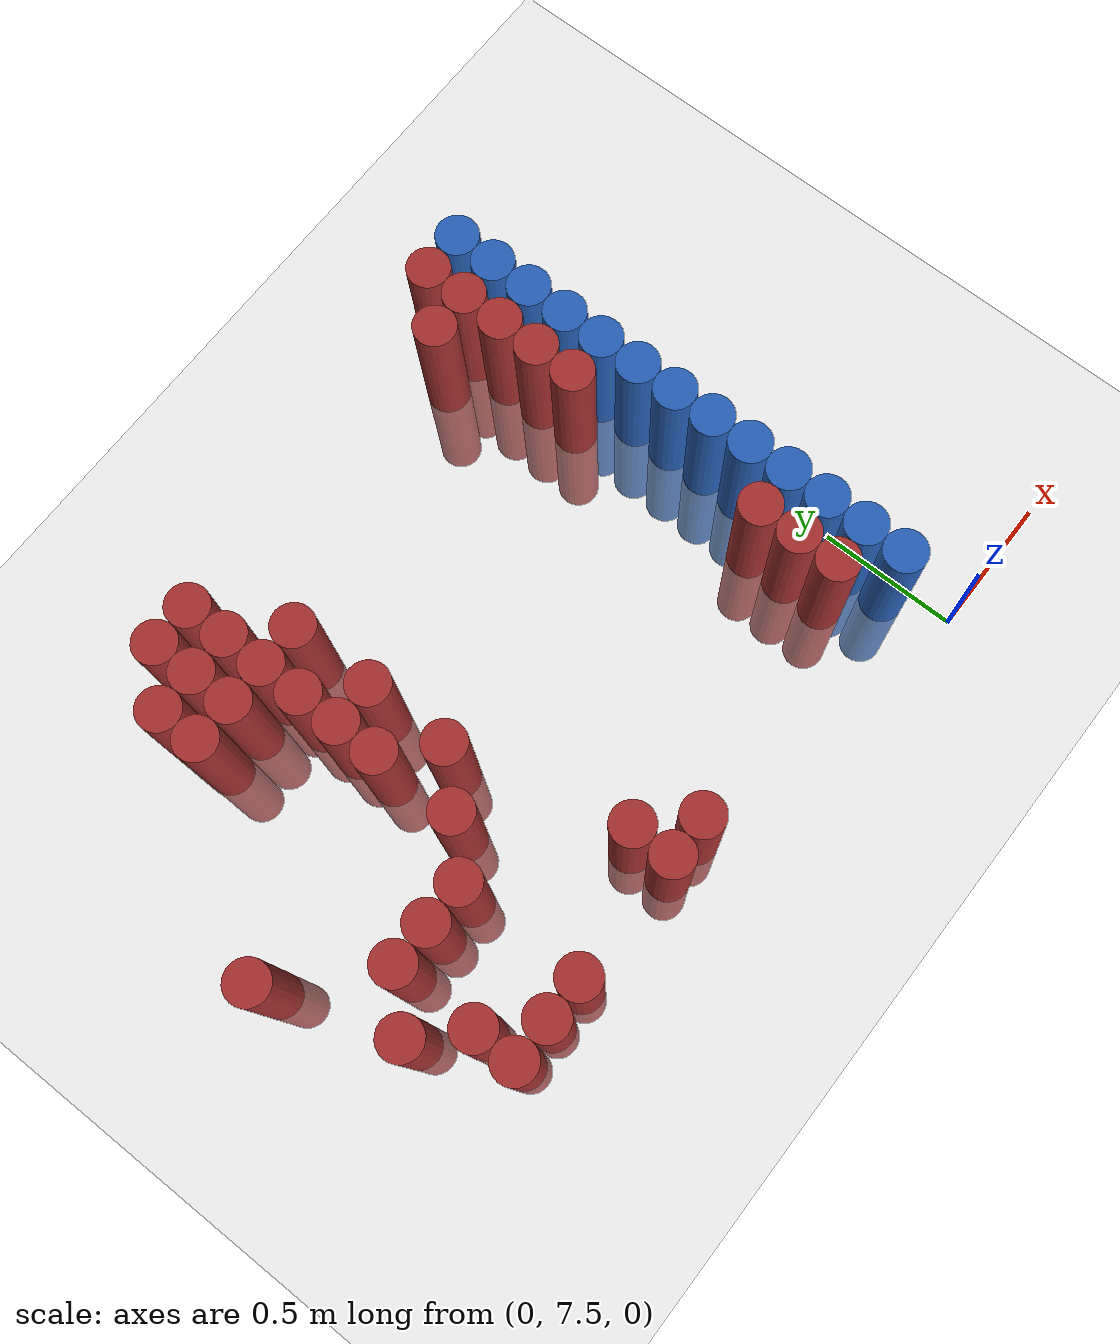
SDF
<sdf version="1.6">
 <world name="default">
  <model name="ground_plane">
   <static>1</static>
   <link name="link">
    <collision name="collision">
     <geometry><plane><normal>0 0 1</normal><size>100 100</size></plane></geometry>
     <surface><friction><ode><mu>100</mu><mu2>50</mu2></ode></friction></surface>
    </collision>
    <visual name="visual">
     <cast_shadows>0</cast_shadows>
     <geometry><plane><normal>0 0 1</normal><size>100 100</size></plane></geometry>
     <material>
      <script><uri>file://media/materials/scripts/gazebo.material</uri><name>Gazebo/Grey</name></script>
     </material>
    </visual>
   </link>
  </model>
  <model name="unit_cylinder_236">
   <static>1</static>
   <pose>-2.325000 8.475000 0.000000 0.000000 0.000000 0.000000</pose>
   <link name="link">
    <inertial>
     <mass>1</mass>
     <inertia><ixx>0.145833</ixx><ixy>0</ixy><ixz>0</ixz><iyy>0.145833</iyy><iyz>0</iyz><izz>0.125</izz></inertia>
    </inertial>
    <collision name="collision">
     <geometry><cylinder><radius>0.075000</radius><length>1</length></cylinder></geometry>
    </collision>
    <visual name="visual">
     <geometry><cylinder><radius>0.075000</radius><length>1</length></cylinder></geometry>
     <material>
      <ambient>0.648000 0.192000 0.192000 1</ambient>
      <diffuse>0.648000 0.192000 0.192000 1</diffuse>
     </material>
     <material>
      <script><name>Gazebo/Grey</name><uri>file://media/materials/scripts/gazebo.material</uri></script>
     </material>
    </visual>
   </link>
  </model>
  <model name="unit_cylinder_242">
   <static>1</static>
   <pose>-2.175000 8.025000 0.000000 0.000000 0.000000 0.000000</pose>
   <link name="link">
    <inertial>
     <mass>1</mass>
     <inertia><ixx>0.145833</ixx><ixy>0</ixy><ixz>0</ixz><iyy>0.145833</iyy><iyz>0</iyz><izz>0.125</izz></inertia>
    </inertial>
    <collision name="collision">
     <geometry><cylinder><radius>0.075000</radius><length>1</length></cylinder></geometry>
    </collision>
    <visual name="visual">
     <geometry><cylinder><radius>0.075000</radius><length>1</length></cylinder></geometry>
     <material>
      <ambient>0.648000 0.192000 0.192000 1</ambient>
      <diffuse>0.648000 0.192000 0.192000 1</diffuse>
     </material>
     <material>
      <script><name>Gazebo/Grey</name><uri>file://media/materials/scripts/gazebo.material</uri></script>
     </material>
    </visual>
   </link>
  </model>
  <model name="unit_cylinder_247">
   <static>1</static>
   <pose>-2.025000 7.725000 0.000000 0.000000 0.000000 0.000000</pose>
   <link name="link">
    <inertial>
     <mass>1</mass>
     <inertia><ixx>0.145833</ixx><ixy>0</ixy><ixz>0</ixz><iyy>0.145833</iyy><iyz>0</iyz><izz>0.125</izz></inertia>
    </inertial>
    <collision name="collision">
     <geometry><cylinder><radius>0.075000</radius><length>1</length></cylinder></geometry>
    </collision>
    <visual name="visual">
     <geometry><cylinder><radius>0.075000</radius><length>1</length></cylinder></geometry>
     <material>
      <ambient>0.648000 0.192000 0.192000 1</ambient>
      <diffuse>0.648000 0.192000 0.192000 1</diffuse>
     </material>
     <material>
      <script><name>Gazebo/Grey</name><uri>file://media/materials/scripts/gazebo.material</uri></script>
     </material>
    </visual>
   </link>
  </model>
  <model name="unit_cylinder_248">
   <static>1</static>
   <pose>-2.025000 7.875000 0.000000 0.000000 0.000000 0.000000</pose>
   <link name="link">
    <inertial>
     <mass>1</mass>
     <inertia><ixx>0.145833</ixx><ixy>0</ixy><ixz>0</ixz><iyy>0.145833</iyy><iyz>0</iyz><izz>0.125</izz></inertia>
    </inertial>
    <collision name="collision">
     <geometry><cylinder><radius>0.075000</radius><length>1</length></cylinder></geometry>
    </collision>
    <visual name="visual">
     <geometry><cylinder><radius>0.075000</radius><length>1</length></cylinder></geometry>
     <material>
      <ambient>0.648000 0.192000 0.192000 1</ambient>
      <diffuse>0.648000 0.192000 0.192000 1</diffuse>
     </material>
     <material>
      <script><name>Gazebo/Grey</name><uri>file://media/materials/scripts/gazebo.material</uri></script>
     </material>
    </visual>
   </link>
  </model>
  <model name="unit_cylinder_249">
   <static>1</static>
   <pose>-2.025000 8.175000 0.000000 0.000000 0.000000 0.000000</pose>
   <link name="link">
    <inertial>
     <mass>1</mass>
     <inertia><ixx>0.145833</ixx><ixy>0</ixy><ixz>0</ixz><iyy>0.145833</iyy><iyz>0</iyz><izz>0.125</izz></inertia>
    </inertial>
    <collision name="collision">
     <geometry><cylinder><radius>0.075000</radius><length>1</length></cylinder></geometry>
    </collision>
    <visual name="visual">
     <geometry><cylinder><radius>0.075000</radius><length>1</length></cylinder></geometry>
     <material>
      <ambient>0.648000 0.192000 0.192000 1</ambient>
      <diffuse>0.648000 0.192000 0.192000 1</diffuse>
     </material>
     <material>
      <script><name>Gazebo/Grey</name><uri>file://media/materials/scripts/gazebo.material</uri></script>
     </material>
    </visual>
   </link>
  </model>
  <model name="unit_cylinder_256">
   <static>1</static>
   <pose>-1.875000 7.725000 0.000000 0.000000 0.000000 0.000000</pose>
   <link name="link">
    <inertial>
     <mass>1</mass>
     <inertia><ixx>0.145833</ixx><ixy>0</ixy><ixz>0</ixz><iyy>0.145833</iyy><iyz>0</iyz><izz>0.125</izz></inertia>
    </inertial>
    <collision name="collision">
     <geometry><cylinder><radius>0.075000</radius><length>1</length></cylinder></geometry>
    </collision>
    <visual name="visual">
     <geometry><cylinder><radius>0.075000</radius><length>1</length></cylinder></geometry>
     <material>
      <ambient>0.648000 0.192000 0.192000 1</ambient>
      <diffuse>0.648000 0.192000 0.192000 1</diffuse>
     </material>
     <material>
      <script><name>Gazebo/Grey</name><uri>file://media/materials/scripts/gazebo.material</uri></script>
     </material>
    </visual>
   </link>
  </model>
  <model name="unit_cylinder_257">
   <static>1</static>
   <pose>-1.875000 8.175000 0.000000 0.000000 0.000000 0.000000</pose>
   <link name="link">
    <inertial>
     <mass>1</mass>
     <inertia><ixx>0.145833</ixx><ixy>0</ixy><ixz>0</ixz><iyy>0.145833</iyy><iyz>0</iyz><izz>0.125</izz></inertia>
    </inertial>
    <collision name="collision">
     <geometry><cylinder><radius>0.075000</radius><length>1</length></cylinder></geometry>
    </collision>
    <visual name="visual">
     <geometry><cylinder><radius>0.075000</radius><length>1</length></cylinder></geometry>
     <material>
      <ambient>0.648000 0.192000 0.192000 1</ambient>
      <diffuse>0.648000 0.192000 0.192000 1</diffuse>
     </material>
     <material>
      <script><name>Gazebo/Grey</name><uri>file://media/materials/scripts/gazebo.material</uri></script>
     </material>
    </visual>
   </link>
  </model>
  <model name="unit_cylinder_258">
   <static>1</static>
   <pose>-1.875000 9.075000 0.000000 0.000000 0.000000 0.000000</pose>
   <link name="link">
    <inertial>
     <mass>1</mass>
     <inertia><ixx>0.145833</ixx><ixy>0</ixy><ixz>0</ixz><iyy>0.145833</iyy><iyz>0</iyz><izz>0.125</izz></inertia>
    </inertial>
    <collision name="collision">
     <geometry><cylinder><radius>0.075000</radius><length>1</length></cylinder></geometry>
    </collision>
    <visual name="visual">
     <geometry><cylinder><radius>0.075000</radius><length>1</length></cylinder></geometry>
     <material>
      <ambient>0.648000 0.192000 0.192000 1</ambient>
      <diffuse>0.648000 0.192000 0.192000 1</diffuse>
     </material>
     <material>
      <script><name>Gazebo/Grey</name><uri>file://media/materials/scripts/gazebo.material</uri></script>
     </material>
    </visual>
   </link>
  </model>
  <model name="unit_cylinder_259">
   <static>1</static>
   <pose>-1.875000 9.225000 0.000000 0.000000 0.000000 0.000000</pose>
   <link name="link">
    <inertial>
     <mass>1</mass>
     <inertia><ixx>0.145833</ixx><ixy>0</ixy><ixz>0</ixz><iyy>0.145833</iyy><iyz>0</iyz><izz>0.125</izz></inertia>
    </inertial>
    <collision name="collision">
     <geometry><cylinder><radius>0.075000</radius><length>1</length></cylinder></geometry>
    </collision>
    <visual name="visual">
     <geometry><cylinder><radius>0.075000</radius><length>1</length></cylinder></geometry>
     <material>
      <ambient>0.648000 0.192000 0.192000 1</ambient>
      <diffuse>0.648000 0.192000 0.192000 1</diffuse>
     </material>
     <material>
      <script><name>Gazebo/Grey</name><uri>file://media/materials/scripts/gazebo.material</uri></script>
     </material>
    </visual>
   </link>
  </model>
  <model name="unit_cylinder_266">
   <static>1</static>
   <pose>-1.725000 7.725000 0.000000 0.000000 0.000000 0.000000</pose>
   <link name="link">
    <inertial>
     <mass>1</mass>
     <inertia><ixx>0.145833</ixx><ixy>0</ixy><ixz>0</ixz><iyy>0.145833</iyy><iyz>0</iyz><izz>0.125</izz></inertia>
    </inertial>
    <collision name="collision">
     <geometry><cylinder><radius>0.075000</radius><length>1</length></cylinder></geometry>
    </collision>
    <visual name="visual">
     <geometry><cylinder><radius>0.075000</radius><length>1</length></cylinder></geometry>
     <material>
      <ambient>0.648000 0.192000 0.192000 1</ambient>
      <diffuse>0.648000 0.192000 0.192000 1</diffuse>
     </material>
     <material>
      <script><name>Gazebo/Grey</name><uri>file://media/materials/scripts/gazebo.material</uri></script>
     </material>
    </visual>
   </link>
  </model>
  <model name="unit_cylinder_267">
   <static>1</static>
   <pose>-1.725000 8.175000 0.000000 0.000000 0.000000 0.000000</pose>
   <link name="link">
    <inertial>
     <mass>1</mass>
     <inertia><ixx>0.145833</ixx><ixy>0</ixy><ixz>0</ixz><iyy>0.145833</iyy><iyz>0</iyz><izz>0.125</izz></inertia>
    </inertial>
    <collision name="collision">
     <geometry><cylinder><radius>0.075000</radius><length>1</length></cylinder></geometry>
    </collision>
    <visual name="visual">
     <geometry><cylinder><radius>0.075000</radius><length>1</length></cylinder></geometry>
     <material>
      <ambient>0.648000 0.192000 0.192000 1</ambient>
      <diffuse>0.648000 0.192000 0.192000 1</diffuse>
     </material>
     <material>
      <script><name>Gazebo/Grey</name><uri>file://media/materials/scripts/gazebo.material</uri></script>
     </material>
    </visual>
   </link>
  </model>
  <model name="unit_cylinder_268">
   <static>1</static>
   <pose>-1.725000 9.075000 0.000000 0.000000 0.000000 0.000000</pose>
   <link name="link">
    <inertial>
     <mass>1</mass>
     <inertia><ixx>0.145833</ixx><ixy>0</ixy><ixz>0</ixz><iyy>0.145833</iyy><iyz>0</iyz><izz>0.125</izz></inertia>
    </inertial>
    <collision name="collision">
     <geometry><cylinder><radius>0.075000</radius><length>1</length></cylinder></geometry>
    </collision>
    <visual name="visual">
     <geometry><cylinder><radius>0.075000</radius><length>1</length></cylinder></geometry>
     <material>
      <ambient>0.648000 0.192000 0.192000 1</ambient>
      <diffuse>0.648000 0.192000 0.192000 1</diffuse>
     </material>
     <material>
      <script><name>Gazebo/Grey</name><uri>file://media/materials/scripts/gazebo.material</uri></script>
     </material>
    </visual>
   </link>
  </model>
  <model name="unit_cylinder_269">
   <static>1</static>
   <pose>-1.725000 9.225000 0.000000 0.000000 0.000000 0.000000</pose>
   <link name="link">
    <inertial>
     <mass>1</mass>
     <inertia><ixx>0.145833</ixx><ixy>0</ixy><ixz>0</ixz><iyy>0.145833</iyy><iyz>0</iyz><izz>0.125</izz></inertia>
    </inertial>
    <collision name="collision">
     <geometry><cylinder><radius>0.075000</radius><length>1</length></cylinder></geometry>
    </collision>
    <visual name="visual">
     <geometry><cylinder><radius>0.075000</radius><length>1</length></cylinder></geometry>
     <material>
      <ambient>0.648000 0.192000 0.192000 1</ambient>
      <diffuse>0.648000 0.192000 0.192000 1</diffuse>
     </material>
     <material>
      <script><name>Gazebo/Grey</name><uri>file://media/materials/scripts/gazebo.material</uri></script>
     </material>
    </visual>
   </link>
  </model>
  <model name="unit_cylinder_270">
   <static>1</static>
   <pose>-1.725000 9.375000 0.000000 0.000000 0.000000 0.000000</pose>
   <link name="link">
    <inertial>
     <mass>1</mass>
     <inertia><ixx>0.145833</ixx><ixy>0</ixy><ixz>0</ixz><iyy>0.145833</iyy><iyz>0</iyz><izz>0.125</izz></inertia>
    </inertial>
    <collision name="collision">
     <geometry><cylinder><radius>0.075000</radius><length>1</length></cylinder></geometry>
    </collision>
    <visual name="visual">
     <geometry><cylinder><radius>0.075000</radius><length>1</length></cylinder></geometry>
     <material>
      <ambient>0.648000 0.192000 0.192000 1</ambient>
      <diffuse>0.648000 0.192000 0.192000 1</diffuse>
     </material>
     <material>
      <script><name>Gazebo/Grey</name><uri>file://media/materials/scripts/gazebo.material</uri></script>
     </material>
    </visual>
   </link>
  </model>
  <model name="unit_cylinder_279">
   <static>1</static>
   <pose>-1.575000 8.325000 0.000000 0.000000 0.000000 0.000000</pose>
   <link name="link">
    <inertial>
     <mass>1</mass>
     <inertia><ixx>0.145833</ixx><ixy>0</ixy><ixz>0</ixz><iyy>0.145833</iyy><iyz>0</iyz><izz>0.125</izz></inertia>
    </inertial>
    <collision name="collision">
     <geometry><cylinder><radius>0.075000</radius><length>1</length></cylinder></geometry>
    </collision>
    <visual name="visual">
     <geometry><cylinder><radius>0.075000</radius><length>1</length></cylinder></geometry>
     <material>
      <ambient>0.648000 0.192000 0.192000 1</ambient>
      <diffuse>0.648000 0.192000 0.192000 1</diffuse>
     </material>
     <material>
      <script><name>Gazebo/Grey</name><uri>file://media/materials/scripts/gazebo.material</uri></script>
     </material>
    </visual>
   </link>
  </model>
  <model name="unit_cylinder_280">
   <static>1</static>
   <pose>-1.575000 8.625000 0.000000 0.000000 0.000000 0.000000</pose>
   <link name="link">
    <inertial>
     <mass>1</mass>
     <inertia><ixx>0.145833</ixx><ixy>0</ixy><ixz>0</ixz><iyy>0.145833</iyy><iyz>0</iyz><izz>0.125</izz></inertia>
    </inertial>
    <collision name="collision">
     <geometry><cylinder><radius>0.075000</radius><length>1</length></cylinder></geometry>
    </collision>
    <visual name="visual">
     <geometry><cylinder><radius>0.075000</radius><length>1</length></cylinder></geometry>
     <material>
      <ambient>0.648000 0.192000 0.192000 1</ambient>
      <diffuse>0.648000 0.192000 0.192000 1</diffuse>
     </material>
     <material>
      <script><name>Gazebo/Grey</name><uri>file://media/materials/scripts/gazebo.material</uri></script>
     </material>
    </visual>
   </link>
  </model>
  <model name="unit_cylinder_281">
   <static>1</static>
   <pose>-1.575000 8.775000 0.000000 0.000000 0.000000 0.000000</pose>
   <link name="link">
    <inertial>
     <mass>1</mass>
     <inertia><ixx>0.145833</ixx><ixy>0</ixy><ixz>0</ixz><iyy>0.145833</iyy><iyz>0</iyz><izz>0.125</izz></inertia>
    </inertial>
    <collision name="collision">
     <geometry><cylinder><radius>0.075000</radius><length>1</length></cylinder></geometry>
    </collision>
    <visual name="visual">
     <geometry><cylinder><radius>0.075000</radius><length>1</length></cylinder></geometry>
     <material>
      <ambient>0.648000 0.192000 0.192000 1</ambient>
      <diffuse>0.648000 0.192000 0.192000 1</diffuse>
     </material>
     <material>
      <script><name>Gazebo/Grey</name><uri>file://media/materials/scripts/gazebo.material</uri></script>
     </material>
    </visual>
   </link>
  </model>
  <model name="unit_cylinder_282">
   <static>1</static>
   <pose>-1.575000 8.925000 0.000000 0.000000 0.000000 0.000000</pose>
   <link name="link">
    <inertial>
     <mass>1</mass>
     <inertia><ixx>0.145833</ixx><ixy>0</ixy><ixz>0</ixz><iyy>0.145833</iyy><iyz>0</iyz><izz>0.125</izz></inertia>
    </inertial>
    <collision name="collision">
     <geometry><cylinder><radius>0.075000</radius><length>1</length></cylinder></geometry>
    </collision>
    <visual name="visual">
     <geometry><cylinder><radius>0.075000</radius><length>1</length></cylinder></geometry>
     <material>
      <ambient>0.648000 0.192000 0.192000 1</ambient>
      <diffuse>0.648000 0.192000 0.192000 1</diffuse>
     </material>
     <material>
      <script><name>Gazebo/Grey</name><uri>file://media/materials/scripts/gazebo.material</uri></script>
     </material>
    </visual>
   </link>
  </model>
  <model name="unit_cylinder_283">
   <static>1</static>
   <pose>-1.575000 9.075000 0.000000 0.000000 0.000000 0.000000</pose>
   <link name="link">
    <inertial>
     <mass>1</mass>
     <inertia><ixx>0.145833</ixx><ixy>0</ixy><ixz>0</ixz><iyy>0.145833</iyy><iyz>0</iyz><izz>0.125</izz></inertia>
    </inertial>
    <collision name="collision">
     <geometry><cylinder><radius>0.075000</radius><length>1</length></cylinder></geometry>
    </collision>
    <visual name="visual">
     <geometry><cylinder><radius>0.075000</radius><length>1</length></cylinder></geometry>
     <material>
      <ambient>0.648000 0.192000 0.192000 1</ambient>
      <diffuse>0.648000 0.192000 0.192000 1</diffuse>
     </material>
     <material>
      <script><name>Gazebo/Grey</name><uri>file://media/materials/scripts/gazebo.material</uri></script>
     </material>
    </visual>
   </link>
  </model>
  <model name="unit_cylinder_284">
   <static>1</static>
   <pose>-1.575000 9.225000 0.000000 0.000000 0.000000 0.000000</pose>
   <link name="link">
    <inertial>
     <mass>1</mass>
     <inertia><ixx>0.145833</ixx><ixy>0</ixy><ixz>0</ixz><iyy>0.145833</iyy><iyz>0</iyz><izz>0.125</izz></inertia>
    </inertial>
    <collision name="collision">
     <geometry><cylinder><radius>0.075000</radius><length>1</length></cylinder></geometry>
    </collision>
    <visual name="visual">
     <geometry><cylinder><radius>0.075000</radius><length>1</length></cylinder></geometry>
     <material>
      <ambient>0.648000 0.192000 0.192000 1</ambient>
      <diffuse>0.648000 0.192000 0.192000 1</diffuse>
     </material>
     <material>
      <script><name>Gazebo/Grey</name><uri>file://media/materials/scripts/gazebo.material</uri></script>
     </material>
    </visual>
   </link>
  </model>
  <model name="unit_cylinder_285">
   <static>1</static>
   <pose>-1.575000 9.375000 0.000000 0.000000 0.000000 0.000000</pose>
   <link name="link">
    <inertial>
     <mass>1</mass>
     <inertia><ixx>0.145833</ixx><ixy>0</ixy><ixz>0</ixz><iyy>0.145833</iyy><iyz>0</iyz><izz>0.125</izz></inertia>
    </inertial>
    <collision name="collision">
     <geometry><cylinder><radius>0.075000</radius><length>1</length></cylinder></geometry>
    </collision>
    <visual name="visual">
     <geometry><cylinder><radius>0.075000</radius><length>1</length></cylinder></geometry>
     <material>
      <ambient>0.648000 0.192000 0.192000 1</ambient>
      <diffuse>0.648000 0.192000 0.192000 1</diffuse>
     </material>
     <material>
      <script><name>Gazebo/Grey</name><uri>file://media/materials/scripts/gazebo.material</uri></script>
     </material>
    </visual>
   </link>
  </model>
  <model name="unit_cylinder_287">
   <static>1</static>
   <pose>-1.425000 8.475000 0.000000 0.000000 0.000000 0.000000</pose>
   <link name="link">
    <inertial>
     <mass>1</mass>
     <inertia><ixx>0.145833</ixx><ixy>0</ixy><ixz>0</ixz><iyy>0.145833</iyy><iyz>0</iyz><izz>0.125</izz></inertia>
    </inertial>
    <collision name="collision">
     <geometry><cylinder><radius>0.075000</radius><length>1</length></cylinder></geometry>
    </collision>
    <visual name="visual">
     <geometry><cylinder><radius>0.075000</radius><length>1</length></cylinder></geometry>
     <material>
      <ambient>0.648000 0.192000 0.192000 1</ambient>
      <diffuse>0.648000 0.192000 0.192000 1</diffuse>
     </material>
     <material>
      <script><name>Gazebo/Grey</name><uri>file://media/materials/scripts/gazebo.material</uri></script>
     </material>
    </visual>
   </link>
  </model>
  <model name="unit_cylinder_288">
   <static>1</static>
   <pose>-1.425000 8.775000 0.000000 0.000000 0.000000 0.000000</pose>
   <link name="link">
    <inertial>
     <mass>1</mass>
     <inertia><ixx>0.145833</ixx><ixy>0</ixy><ixz>0</ixz><iyy>0.145833</iyy><iyz>0</iyz><izz>0.125</izz></inertia>
    </inertial>
    <collision name="collision">
     <geometry><cylinder><radius>0.075000</radius><length>1</length></cylinder></geometry>
    </collision>
    <visual name="visual">
     <geometry><cylinder><radius>0.075000</radius><length>1</length></cylinder></geometry>
     <material>
      <ambient>0.648000 0.192000 0.192000 1</ambient>
      <diffuse>0.648000 0.192000 0.192000 1</diffuse>
     </material>
     <material>
      <script><name>Gazebo/Grey</name><uri>file://media/materials/scripts/gazebo.material</uri></script>
     </material>
    </visual>
   </link>
  </model>
  <model name="unit_cylinder_289">
   <static>1</static>
   <pose>-1.425000 9.075000 0.000000 0.000000 0.000000 0.000000</pose>
   <link name="link">
    <inertial>
     <mass>1</mass>
     <inertia><ixx>0.145833</ixx><ixy>0</ixy><ixz>0</ixz><iyy>0.145833</iyy><iyz>0</iyz><izz>0.125</izz></inertia>
    </inertial>
    <collision name="collision">
     <geometry><cylinder><radius>0.075000</radius><length>1</length></cylinder></geometry>
    </collision>
    <visual name="visual">
     <geometry><cylinder><radius>0.075000</radius><length>1</length></cylinder></geometry>
     <material>
      <ambient>0.648000 0.192000 0.192000 1</ambient>
      <diffuse>0.648000 0.192000 0.192000 1</diffuse>
     </material>
     <material>
      <script><name>Gazebo/Grey</name><uri>file://media/materials/scripts/gazebo.material</uri></script>
     </material>
    </visual>
   </link>
  </model>
  <model name="unit_cylinder_290">
   <static>1</static>
   <pose>-1.275000 7.725000 0.000000 0.000000 0.000000 0.000000</pose>
   <link name="link">
    <inertial>
     <mass>1</mass>
     <inertia><ixx>0.145833</ixx><ixy>0</ixy><ixz>0</ixz><iyy>0.145833</iyy><iyz>0</iyz><izz>0.125</izz></inertia>
    </inertial>
    <collision name="collision">
     <geometry><cylinder><radius>0.075000</radius><length>1</length></cylinder></geometry>
    </collision>
    <visual name="visual">
     <geometry><cylinder><radius>0.075000</radius><length>1</length></cylinder></geometry>
     <material>
      <ambient>0.648000 0.192000 0.192000 1</ambient>
      <diffuse>0.648000 0.192000 0.192000 1</diffuse>
     </material>
     <material>
      <script><name>Gazebo/Grey</name><uri>file://media/materials/scripts/gazebo.material</uri></script>
     </material>
    </visual>
   </link>
  </model>
  <model name="unit_cylinder_291">
   <static>1</static>
   <pose>-1.275000 7.875000 0.000000 0.000000 0.000000 0.000000</pose>
   <link name="link">
    <inertial>
     <mass>1</mass>
     <inertia><ixx>0.145833</ixx><ixy>0</ixy><ixz>0</ixz><iyy>0.145833</iyy><iyz>0</iyz><izz>0.125</izz></inertia>
    </inertial>
    <collision name="collision">
     <geometry><cylinder><radius>0.075000</radius><length>1</length></cylinder></geometry>
    </collision>
    <visual name="visual">
     <geometry><cylinder><radius>0.075000</radius><length>1</length></cylinder></geometry>
     <material>
      <ambient>0.648000 0.192000 0.192000 1</ambient>
      <diffuse>0.648000 0.192000 0.192000 1</diffuse>
     </material>
     <material>
      <script><name>Gazebo/Grey</name><uri>file://media/materials/scripts/gazebo.material</uri></script>
     </material>
    </visual>
   </link>
  </model>
  <model name="unit_cylinder_292">
   <static>1</static>
   <pose>-1.125000 7.725000 0.000000 0.000000 0.000000 0.000000</pose>
   <link name="link">
    <inertial>
     <mass>1</mass>
     <inertia><ixx>0.145833</ixx><ixy>0</ixy><ixz>0</ixz><iyy>0.145833</iyy><iyz>0</iyz><izz>0.125</izz></inertia>
    </inertial>
    <collision name="collision">
     <geometry><cylinder><radius>0.075000</radius><length>1</length></cylinder></geometry>
    </collision>
    <visual name="visual">
     <geometry><cylinder><radius>0.075000</radius><length>1</length></cylinder></geometry>
     <material>
      <ambient>0.648000 0.192000 0.192000 1</ambient>
      <diffuse>0.648000 0.192000 0.192000 1</diffuse>
     </material>
     <material>
      <script><name>Gazebo/Grey</name><uri>file://media/materials/scripts/gazebo.material</uri></script>
     </material>
    </visual>
   </link>
  </model>
  <model name="unit_cylinder_293">
   <static>1</static>
   <pose>-0.375000 9.375000 0.000000 0.000000 0.000000 0.000000</pose>
   <link name="link">
    <inertial>
     <mass>1</mass>
     <inertia><ixx>0.145833</ixx><ixy>0</ixy><ixz>0</ixz><iyy>0.145833</iyy><iyz>0</iyz><izz>0.125</izz></inertia>
    </inertial>
    <collision name="collision">
     <geometry><cylinder><radius>0.075000</radius><length>1</length></cylinder></geometry>
    </collision>
    <visual name="visual">
     <geometry><cylinder><radius>0.075000</radius><length>1</length></cylinder></geometry>
     <material>
      <ambient>0.648000 0.192000 0.192000 1</ambient>
      <diffuse>0.648000 0.192000 0.192000 1</diffuse>
     </material>
     <material>
      <script><name>Gazebo/Grey</name><uri>file://media/materials/scripts/gazebo.material</uri></script>
     </material>
    </visual>
   </link>
  </model>
  <model name="unit_cylinder_304">
   <static>1</static>
   <pose>-0.225000 7.875000 0.000000 0.000000 0.000000 0.000000</pose>
   <link name="link">
    <inertial>
     <mass>1</mass>
     <inertia><ixx>0.145833</ixx><ixy>0</ixy><ixz>0</ixz><iyy>0.145833</iyy><iyz>0</iyz><izz>0.125</izz></inertia>
    </inertial>
    <collision name="collision">
     <geometry><cylinder><radius>0.075000</radius><length>1</length></cylinder></geometry>
    </collision>
    <visual name="visual">
     <geometry><cylinder><radius>0.075000</radius><length>1</length></cylinder></geometry>
     <material>
      <ambient>0.648000 0.192000 0.192000 1</ambient>
      <diffuse>0.648000 0.192000 0.192000 1</diffuse>
     </material>
     <material>
      <script><name>Gazebo/Grey</name><uri>file://media/materials/scripts/gazebo.material</uri></script>
     </material>
    </visual>
   </link>
  </model>
  <model name="unit_cylinder_305">
   <static>1</static>
   <pose>-0.225000 8.025000 0.000000 0.000000 0.000000 0.000000</pose>
   <link name="link">
    <inertial>
     <mass>1</mass>
     <inertia><ixx>0.145833</ixx><ixy>0</ixy><ixz>0</ixz><iyy>0.145833</iyy><iyz>0</iyz><izz>0.125</izz></inertia>
    </inertial>
    <collision name="collision">
     <geometry><cylinder><radius>0.075000</radius><length>1</length></cylinder></geometry>
    </collision>
    <visual name="visual">
     <geometry><cylinder><radius>0.075000</radius><length>1</length></cylinder></geometry>
     <material>
      <ambient>0.648000 0.192000 0.192000 1</ambient>
      <diffuse>0.648000 0.192000 0.192000 1</diffuse>
     </material>
     <material>
      <script><name>Gazebo/Grey</name><uri>file://media/materials/scripts/gazebo.material</uri></script>
     </material>
    </visual>
   </link>
  </model>
  <model name="unit_cylinder_306">
   <static>1</static>
   <pose>-0.225000 8.175000 0.000000 0.000000 0.000000 0.000000</pose>
   <link name="link">
    <inertial>
     <mass>1</mass>
     <inertia><ixx>0.145833</ixx><ixy>0</ixy><ixz>0</ixz><iyy>0.145833</iyy><iyz>0</iyz><izz>0.125</izz></inertia>
    </inertial>
    <collision name="collision">
     <geometry><cylinder><radius>0.075000</radius><length>1</length></cylinder></geometry>
    </collision>
    <visual name="visual">
     <geometry><cylinder><radius>0.075000</radius><length>1</length></cylinder></geometry>
     <material>
      <ambient>0.648000 0.192000 0.192000 1</ambient>
      <diffuse>0.648000 0.192000 0.192000 1</diffuse>
     </material>
     <material>
      <script><name>Gazebo/Grey</name><uri>file://media/materials/scripts/gazebo.material</uri></script>
     </material>
    </visual>
   </link>
  </model>
  <model name="unit_cylinder_307">
   <static>1</static>
   <pose>-0.225000 8.925000 0.000000 0.000000 0.000000 0.000000</pose>
   <link name="link">
    <inertial>
     <mass>1</mass>
     <inertia><ixx>0.145833</ixx><ixy>0</ixy><ixz>0</ixz><iyy>0.145833</iyy><iyz>0</iyz><izz>0.125</izz></inertia>
    </inertial>
    <collision name="collision">
     <geometry><cylinder><radius>0.075000</radius><length>1</length></cylinder></geometry>
    </collision>
    <visual name="visual">
     <geometry><cylinder><radius>0.075000</radius><length>1</length></cylinder></geometry>
     <material>
      <ambient>0.648000 0.192000 0.192000 1</ambient>
      <diffuse>0.648000 0.192000 0.192000 1</diffuse>
     </material>
     <material>
      <script><name>Gazebo/Grey</name><uri>file://media/materials/scripts/gazebo.material</uri></script>
     </material>
    </visual>
   </link>
  </model>
  <model name="unit_cylinder_308">
   <static>1</static>
   <pose>-0.225000 9.075000 0.000000 0.000000 0.000000 0.000000</pose>
   <link name="link">
    <inertial>
     <mass>1</mass>
     <inertia><ixx>0.145833</ixx><ixy>0</ixy><ixz>0</ixz><iyy>0.145833</iyy><iyz>0</iyz><izz>0.125</izz></inertia>
    </inertial>
    <collision name="collision">
     <geometry><cylinder><radius>0.075000</radius><length>1</length></cylinder></geometry>
    </collision>
    <visual name="visual">
     <geometry><cylinder><radius>0.075000</radius><length>1</length></cylinder></geometry>
     <material>
      <ambient>0.648000 0.192000 0.192000 1</ambient>
      <diffuse>0.648000 0.192000 0.192000 1</diffuse>
     </material>
     <material>
      <script><name>Gazebo/Grey</name><uri>file://media/materials/scripts/gazebo.material</uri></script>
     </material>
    </visual>
   </link>
  </model>
  <model name="unit_cylinder_309">
   <static>1</static>
   <pose>-0.225000 9.225000 0.000000 0.000000 0.000000 0.000000</pose>
   <link name="link">
    <inertial>
     <mass>1</mass>
     <inertia><ixx>0.145833</ixx><ixy>0</ixy><ixz>0</ixz><iyy>0.145833</iyy><iyz>0</iyz><izz>0.125</izz></inertia>
    </inertial>
    <collision name="collision">
     <geometry><cylinder><radius>0.075000</radius><length>1</length></cylinder></geometry>
    </collision>
    <visual name="visual">
     <geometry><cylinder><radius>0.075000</radius><length>1</length></cylinder></geometry>
     <material>
      <ambient>0.648000 0.192000 0.192000 1</ambient>
      <diffuse>0.648000 0.192000 0.192000 1</diffuse>
     </material>
     <material>
      <script><name>Gazebo/Grey</name><uri>file://media/materials/scripts/gazebo.material</uri></script>
     </material>
    </visual>
   </link>
  </model>
  <model name="unit_cylinder_310">
   <static>1</static>
   <pose>-0.225000 9.375000 0.000000 0.000000 0.000000 0.000000</pose>
   <link name="link">
    <inertial>
     <mass>1</mass>
     <inertia><ixx>0.145833</ixx><ixy>0</ixy><ixz>0</ixz><iyy>0.145833</iyy><iyz>0</iyz><izz>0.125</izz></inertia>
    </inertial>
    <collision name="collision">
     <geometry><cylinder><radius>0.075000</radius><length>1</length></cylinder></geometry>
    </collision>
    <visual name="visual">
     <geometry><cylinder><radius>0.075000</radius><length>1</length></cylinder></geometry>
     <material>
      <ambient>0.648000 0.192000 0.192000 1</ambient>
      <diffuse>0.648000 0.192000 0.192000 1</diffuse>
     </material>
     <material>
      <script><name>Gazebo/Grey</name><uri>file://media/materials/scripts/gazebo.material</uri></script>
     </material>
    </visual>
   </link>
  </model>
  <model name="unit_cylinder_311">
   <static>1</static>
   <pose>-0.225000 9.525000 0.000000 0.000000 0.000000 0.000000</pose>
   <link name="link">
    <inertial>
     <mass>1</mass>
     <inertia><ixx>0.145833</ixx><ixy>0</ixy><ixz>0</ixz><iyy>0.145833</iyy><iyz>0</iyz><izz>0.125</izz></inertia>
    </inertial>
    <collision name="collision">
     <geometry><cylinder><radius>0.075000</radius><length>1</length></cylinder></geometry>
    </collision>
    <visual name="visual">
     <geometry><cylinder><radius>0.075000</radius><length>1</length></cylinder></geometry>
     <material>
      <ambient>0.648000 0.192000 0.192000 1</ambient>
      <diffuse>0.648000 0.192000 0.192000 1</diffuse>
     </material>
     <material>
      <script><name>Gazebo/Grey</name><uri>file://media/materials/scripts/gazebo.material</uri></script>
     </material>
    </visual>
   </link>
  </model>
  <model name="unit_cylinder_329">
   <static>1</static>
   <pose>-0.075000 7.725000 0.000000 0.000000 0.000000 0.000000</pose>
   <link name="link">
    <inertial>
     <mass>1</mass>
     <inertia><ixx>0.145833</ixx><ixy>0</ixy><ixz>0</ixz><iyy>0.145833</iyy><iyz>0</iyz><izz>0.125</izz></inertia>
    </inertial>
    <collision name="collision">
     <geometry><cylinder><radius>0.075000</radius><length>1</length></cylinder></geometry>
    </collision>
    <visual name="visual">
     <geometry><cylinder><radius>0.075000</radius><length>1</length></cylinder></geometry>
     <material>
      <ambient>0.152000 0.379000 0.720000 1</ambient>
      <diffuse>0.152000 0.379000 0.720000 1</diffuse>
     </material>
     <material>
      <script><name>Gazebo/Grey</name><uri>file://media/materials/scripts/gazebo.material</uri></script>
     </material>
    </visual>
   </link>
  </model>
  <model name="unit_cylinder_330">
   <static>1</static>
   <pose>-0.075000 7.875000 0.000000 0.000000 0.000000 0.000000</pose>
   <link name="link">
    <inertial>
     <mass>1</mass>
     <inertia><ixx>0.145833</ixx><ixy>0</ixy><ixz>0</ixz><iyy>0.145833</iyy><iyz>0</iyz><izz>0.125</izz></inertia>
    </inertial>
    <collision name="collision">
     <geometry><cylinder><radius>0.075000</radius><length>1</length></cylinder></geometry>
    </collision>
    <visual name="visual">
     <geometry><cylinder><radius>0.075000</radius><length>1</length></cylinder></geometry>
     <material>
      <ambient>0.152000 0.379000 0.720000 1</ambient>
      <diffuse>0.152000 0.379000 0.720000 1</diffuse>
     </material>
     <material>
      <script><name>Gazebo/Grey</name><uri>file://media/materials/scripts/gazebo.material</uri></script>
     </material>
    </visual>
   </link>
  </model>
  <model name="unit_cylinder_331">
   <static>1</static>
   <pose>-0.075000 8.025000 0.000000 0.000000 0.000000 0.000000</pose>
   <link name="link">
    <inertial>
     <mass>1</mass>
     <inertia><ixx>0.145833</ixx><ixy>0</ixy><ixz>0</ixz><iyy>0.145833</iyy><iyz>0</iyz><izz>0.125</izz></inertia>
    </inertial>
    <collision name="collision">
     <geometry><cylinder><radius>0.075000</radius><length>1</length></cylinder></geometry>
    </collision>
    <visual name="visual">
     <geometry><cylinder><radius>0.075000</radius><length>1</length></cylinder></geometry>
     <material>
      <ambient>0.152000 0.379000 0.720000 1</ambient>
      <diffuse>0.152000 0.379000 0.720000 1</diffuse>
     </material>
     <material>
      <script><name>Gazebo/Grey</name><uri>file://media/materials/scripts/gazebo.material</uri></script>
     </material>
    </visual>
   </link>
  </model>
  <model name="unit_cylinder_332">
   <static>1</static>
   <pose>-0.075000 8.175000 0.000000 0.000000 0.000000 0.000000</pose>
   <link name="link">
    <inertial>
     <mass>1</mass>
     <inertia><ixx>0.145833</ixx><ixy>0</ixy><ixz>0</ixz><iyy>0.145833</iyy><iyz>0</iyz><izz>0.125</izz></inertia>
    </inertial>
    <collision name="collision">
     <geometry><cylinder><radius>0.075000</radius><length>1</length></cylinder></geometry>
    </collision>
    <visual name="visual">
     <geometry><cylinder><radius>0.075000</radius><length>1</length></cylinder></geometry>
     <material>
      <ambient>0.152000 0.379000 0.720000 1</ambient>
      <diffuse>0.152000 0.379000 0.720000 1</diffuse>
     </material>
     <material>
      <script><name>Gazebo/Grey</name><uri>file://media/materials/scripts/gazebo.material</uri></script>
     </material>
    </visual>
   </link>
  </model>
  <model name="unit_cylinder_333">
   <static>1</static>
   <pose>-0.075000 8.325000 0.000000 0.000000 0.000000 0.000000</pose>
   <link name="link">
    <inertial>
     <mass>1</mass>
     <inertia><ixx>0.145833</ixx><ixy>0</ixy><ixz>0</ixz><iyy>0.145833</iyy><iyz>0</iyz><izz>0.125</izz></inertia>
    </inertial>
    <collision name="collision">
     <geometry><cylinder><radius>0.075000</radius><length>1</length></cylinder></geometry>
    </collision>
    <visual name="visual">
     <geometry><cylinder><radius>0.075000</radius><length>1</length></cylinder></geometry>
     <material>
      <ambient>0.152000 0.379000 0.720000 1</ambient>
      <diffuse>0.152000 0.379000 0.720000 1</diffuse>
     </material>
     <material>
      <script><name>Gazebo/Grey</name><uri>file://media/materials/scripts/gazebo.material</uri></script>
     </material>
    </visual>
   </link>
  </model>
  <model name="unit_cylinder_334">
   <static>1</static>
   <pose>-0.075000 8.475000 0.000000 0.000000 0.000000 0.000000</pose>
   <link name="link">
    <inertial>
     <mass>1</mass>
     <inertia><ixx>0.145833</ixx><ixy>0</ixy><ixz>0</ixz><iyy>0.145833</iyy><iyz>0</iyz><izz>0.125</izz></inertia>
    </inertial>
    <collision name="collision">
     <geometry><cylinder><radius>0.075000</radius><length>1</length></cylinder></geometry>
    </collision>
    <visual name="visual">
     <geometry><cylinder><radius>0.075000</radius><length>1</length></cylinder></geometry>
     <material>
      <ambient>0.152000 0.379000 0.720000 1</ambient>
      <diffuse>0.152000 0.379000 0.720000 1</diffuse>
     </material>
     <material>
      <script><name>Gazebo/Grey</name><uri>file://media/materials/scripts/gazebo.material</uri></script>
     </material>
    </visual>
   </link>
  </model>
  <model name="unit_cylinder_335">
   <static>1</static>
   <pose>-0.075000 8.625000 0.000000 0.000000 0.000000 0.000000</pose>
   <link name="link">
    <inertial>
     <mass>1</mass>
     <inertia><ixx>0.145833</ixx><ixy>0</ixy><ixz>0</ixz><iyy>0.145833</iyy><iyz>0</iyz><izz>0.125</izz></inertia>
    </inertial>
    <collision name="collision">
     <geometry><cylinder><radius>0.075000</radius><length>1</length></cylinder></geometry>
    </collision>
    <visual name="visual">
     <geometry><cylinder><radius>0.075000</radius><length>1</length></cylinder></geometry>
     <material>
      <ambient>0.152000 0.379000 0.720000 1</ambient>
      <diffuse>0.152000 0.379000 0.720000 1</diffuse>
     </material>
     <material>
      <script><name>Gazebo/Grey</name><uri>file://media/materials/scripts/gazebo.material</uri></script>
     </material>
    </visual>
   </link>
  </model>
  <model name="unit_cylinder_336">
   <static>1</static>
   <pose>-0.075000 8.775000 0.000000 0.000000 0.000000 0.000000</pose>
   <link name="link">
    <inertial>
     <mass>1</mass>
     <inertia><ixx>0.145833</ixx><ixy>0</ixy><ixz>0</ixz><iyy>0.145833</iyy><iyz>0</iyz><izz>0.125</izz></inertia>
    </inertial>
    <collision name="collision">
     <geometry><cylinder><radius>0.075000</radius><length>1</length></cylinder></geometry>
    </collision>
    <visual name="visual">
     <geometry><cylinder><radius>0.075000</radius><length>1</length></cylinder></geometry>
     <material>
      <ambient>0.152000 0.379000 0.720000 1</ambient>
      <diffuse>0.152000 0.379000 0.720000 1</diffuse>
     </material>
     <material>
      <script><name>Gazebo/Grey</name><uri>file://media/materials/scripts/gazebo.material</uri></script>
     </material>
    </visual>
   </link>
  </model>
  <model name="unit_cylinder_337">
   <static>1</static>
   <pose>-0.075000 8.925000 0.000000 0.000000 0.000000 0.000000</pose>
   <link name="link">
    <inertial>
     <mass>1</mass>
     <inertia><ixx>0.145833</ixx><ixy>0</ixy><ixz>0</ixz><iyy>0.145833</iyy><iyz>0</iyz><izz>0.125</izz></inertia>
    </inertial>
    <collision name="collision">
     <geometry><cylinder><radius>0.075000</radius><length>1</length></cylinder></geometry>
    </collision>
    <visual name="visual">
     <geometry><cylinder><radius>0.075000</radius><length>1</length></cylinder></geometry>
     <material>
      <ambient>0.152000 0.379000 0.720000 1</ambient>
      <diffuse>0.152000 0.379000 0.720000 1</diffuse>
     </material>
     <material>
      <script><name>Gazebo/Grey</name><uri>file://media/materials/scripts/gazebo.material</uri></script>
     </material>
    </visual>
   </link>
  </model>
  <model name="unit_cylinder_338">
   <static>1</static>
   <pose>-0.075000 9.075000 0.000000 0.000000 0.000000 0.000000</pose>
   <link name="link">
    <inertial>
     <mass>1</mass>
     <inertia><ixx>0.145833</ixx><ixy>0</ixy><ixz>0</ixz><iyy>0.145833</iyy><iyz>0</iyz><izz>0.125</izz></inertia>
    </inertial>
    <collision name="collision">
     <geometry><cylinder><radius>0.075000</radius><length>1</length></cylinder></geometry>
    </collision>
    <visual name="visual">
     <geometry><cylinder><radius>0.075000</radius><length>1</length></cylinder></geometry>
     <material>
      <ambient>0.152000 0.379000 0.720000 1</ambient>
      <diffuse>0.152000 0.379000 0.720000 1</diffuse>
     </material>
     <material>
      <script><name>Gazebo/Grey</name><uri>file://media/materials/scripts/gazebo.material</uri></script>
     </material>
    </visual>
   </link>
  </model>
  <model name="unit_cylinder_339">
   <static>1</static>
   <pose>-0.075000 9.225000 0.000000 0.000000 0.000000 0.000000</pose>
   <link name="link">
    <inertial>
     <mass>1</mass>
     <inertia><ixx>0.145833</ixx><ixy>0</ixy><ixz>0</ixz><iyy>0.145833</iyy><iyz>0</iyz><izz>0.125</izz></inertia>
    </inertial>
    <collision name="collision">
     <geometry><cylinder><radius>0.075000</radius><length>1</length></cylinder></geometry>
    </collision>
    <visual name="visual">
     <geometry><cylinder><radius>0.075000</radius><length>1</length></cylinder></geometry>
     <material>
      <ambient>0.152000 0.379000 0.720000 1</ambient>
      <diffuse>0.152000 0.379000 0.720000 1</diffuse>
     </material>
     <material>
      <script><name>Gazebo/Grey</name><uri>file://media/materials/scripts/gazebo.material</uri></script>
     </material>
    </visual>
   </link>
  </model>
  <model name="unit_cylinder_340">
   <static>1</static>
   <pose>-0.075000 9.375000 0.000000 0.000000 0.000000 0.000000</pose>
   <link name="link">
    <inertial>
     <mass>1</mass>
     <inertia><ixx>0.145833</ixx><ixy>0</ixy><ixz>0</ixz><iyy>0.145833</iyy><iyz>0</iyz><izz>0.125</izz></inertia>
    </inertial>
    <collision name="collision">
     <geometry><cylinder><radius>0.075000</radius><length>1</length></cylinder></geometry>
    </collision>
    <visual name="visual">
     <geometry><cylinder><radius>0.075000</radius><length>1</length></cylinder></geometry>
     <material>
      <ambient>0.152000 0.379000 0.720000 1</ambient>
      <diffuse>0.152000 0.379000 0.720000 1</diffuse>
     </material>
     <material>
      <script><name>Gazebo/Grey</name><uri>file://media/materials/scripts/gazebo.material</uri></script>
     </material>
    </visual>
   </link>
  </model>
  <model name="unit_cylinder_341">
   <static>1</static>
   <pose>-0.075000 9.525000 0.000000 0.000000 0.000000 0.000000</pose>
   <link name="link">
    <inertial>
     <mass>1</mass>
     <inertia><ixx>0.145833</ixx><ixy>0</ixy><ixz>0</ixz><iyy>0.145833</iyy><iyz>0</iyz><izz>0.125</izz></inertia>
    </inertial>
    <collision name="collision">
     <geometry><cylinder><radius>0.075000</radius><length>1</length></cylinder></geometry>
    </collision>
    <visual name="visual">
     <geometry><cylinder><radius>0.075000</radius><length>1</length></cylinder></geometry>
     <material>
      <ambient>0.152000 0.379000 0.720000 1</ambient>
      <diffuse>0.152000 0.379000 0.720000 1</diffuse>
     </material>
     <material>
      <script><name>Gazebo/Grey</name><uri>file://media/materials/scripts/gazebo.material</uri></script>
     </material>
    </visual>
   </link>
  </model>
 </world>
</sdf>
